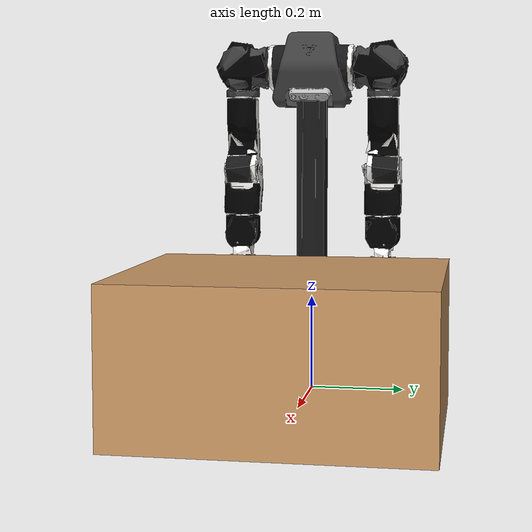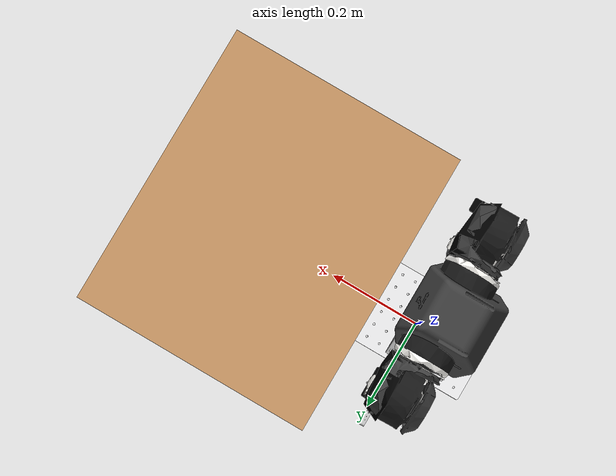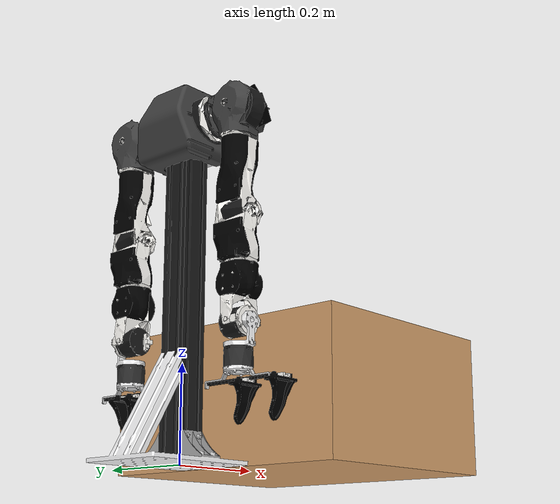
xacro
<?xml version="1.0"?>
<robot name="openarm" xmlns:xacro="http://www.ros.org/wiki/xacro">

  <!-- ==================== Arguments ==================== -->
  <xacro:arg name="use_camera" default="true"/>
  <xacro:arg name="use_table" default="true"/>
  <xacro:arg name="gazebo" default="false"/> <!-- 预留，暂未用 -->

  <!-- ==================== Includes / Materials ==================== -->
  <material name="aluminum">
    <color rgba="0.5 0.5 0.5 1"/>
  </material>
  <material name="plastic">
    <color rgba="0.1 0.1 0.1 1"/>
  </material>

  <!-- ==================== World & Base ==================== -->
  <link name="world"/>

  <link name="openarm_body_link0">
    <visual>
      <origin xyz="0 0 0" rpy="0 0 0"/>
      <geometry>
        <mesh filename="package://openarm_description/meshes/body/v10/visual/body_link0.dae" scale="0.001 0.001 0.001"/>
      </geometry>
    </visual>
    <collision>
      <origin xyz="0 0 0" rpy="0 0 0"/>
      <geometry>
        <mesh filename="package://openarm_description/meshes/body/v10/collision/body_link0_symp.stl" scale="0.001 0.001 0.001"/>
      </geometry>
    </collision>
    <inertial>
      <mass value="13.89"/>
      <origin xyz="0 0 0" rpy="0 0 0"/>
      <inertia ixx="1.653" ixy="0.0" ixz="0.0" iyy="1.653" iyz="0.0" izz="0.051"/>
    </inertial>
  </link>

  <joint name="openarm_body_world_joint" type="fixed">
    <parent link="world"/>
    <child link="openarm_body_link0"/>
    <origin xyz="0 0 0" rpy="0 0 0"/>
  </joint>

  <!-- ==================== Arm Macro ==================== -->
  <xacro:macro name="openarm_arm" params="prefix reflect">

    <!-- Fixed joint from body to arm base -->
    <joint name="${prefix}_openarm_body_link0_joint" type="fixed">
      <parent link="openarm_body_link0"/>
      <child link="${prefix}_link0"/>
      <origin xyz="0 ${reflect * 0.031} 0.698" rpy="${reflect * -1.5708} 0 0"/>
    </joint>

    <!-- Link0 -->
    <link name="${prefix}_link0">
      <visual>
        <origin xyz="0 0 0" rpy="0 0 0"/>
        <geometry>
          <mesh filename="package://openarm_description/meshes/arm/v10/visual/link0.dae"
                scale="0.001 ${reflect * -0.001} 0.001"/>
        </geometry>
      </visual>
      <collision>
        <origin xyz="0 0 0" rpy="0 0 0"/>
        <geometry>
          <mesh filename="package://openarm_description/meshes/arm/v10/collision/link0_symp.stl"
                scale="0.001 ${reflect * -0.001} 0.001"/>
        </geometry>
      </collision>
      <inertial>
        <mass value="1.1432284943239561"/>
        <origin xyz="-0.0009483362816297526 ${reflect * -0.0001580207020448382} 0.03076860287587199" rpy="0 0 0"/>
        <inertia ixx="0.001128" ixy="${reflect * -4e-06}" ixz="-3.3e-05"
                 iyy="0.000962" iyz="${reflect * -7e-06}" izz="0.00147"/>
      </inertial>
    </link>

    <!-- Link1 -->
    <link name="${prefix}_link1">
      <visual>
        <origin xyz="0 0 -0.0625" rpy="0 0 0"/>
        <geometry>
          <mesh filename="package://openarm_description/meshes/arm/v10/visual/link1.dae"
                scale="0.001 ${reflect * -0.001} 0.001"/>
        </geometry>
      </visual>
      <collision>
        <origin xyz="0 0 -0.0625" rpy="0 0 0"/>
        <geometry>
          <mesh filename="package://openarm_description/meshes/arm/v10/collision/link1_symp.stl"
                scale="0.001 ${reflect * -0.001} 0.001"/>
        </geometry>
      </collision>
      <inertial>
        <mass value="1.1416684646202298"/>
        <origin xyz="0.0011467657911800769 ${reflect * -3.319987657026362e-05} 0.05395284380736254" rpy="0 0 0"/>
        <inertia ixx="0.001567" ixy="${reflect * -1e-06}" ixz="-2.9e-05"
                 iyy="0.001273" iyz="${reflect * 1e-06}" izz="0.001016"/>
      </inertial>
    </link>

    <joint name="${prefix}_joint1" type="revolute">
      <parent link="${prefix}_link0"/>
      <child link="${prefix}_link1"/>
      <origin xyz="0 0 0.0625" rpy="0 0 0"/>
      <axis xyz="0 0 1"/>
      <limit effort="40" lower="${reflect * -3.490659}" upper="${reflect * 1.396263}" velocity="16.754666"/>
    </joint>

    <!-- Link2 -->
    <link name="${prefix}_link2">
      <visual>
        <origin xyz="0.0301 0 -0.1225" rpy="0 0 0"/>
        <geometry>
          <mesh filename="package://openarm_description/meshes/arm/v10/visual/link2.dae"
                scale="0.001 ${reflect * -0.001} 0.001"/>
        </geometry>
      </visual>
      <collision>
        <origin xyz="0.0301 0 -0.1225" rpy="0 0 0"/>
        <geometry>
          <mesh filename="package://openarm_description/meshes/arm/v10/collision/link2_symp.stl"
                scale="0.001 ${reflect * -0.001} 0.001"/>
        </geometry>
      </collision>
      <inertial>
        <mass value="0.2775092746011571"/>
        <origin xyz="0.00839629182351943 ${reflect * -2.0145102027597523e-08} 0.03256649300522363" rpy="0 0 0"/>
        <inertia ixx="0.000359" ixy="${reflect * 1e-06}" ixz="-0.000109"
                 iyy="0.000376" iyz="${reflect * 1e-06}" izz="0.000232"/>
      </inertial>
    </link>

    <joint name="${prefix}_joint2" type="revolute">
      <parent link="${prefix}_link1"/>
      <child link="${prefix}_link2"/>
      <origin xyz="-0.0301 0 0.06" rpy="${reflect * -1.57079632679} 0 0"/>
      <axis xyz="-1 0 0"/>
      <limit effort="40" lower="${reflect * -3.3161253267948965}" upper="${reflect * 0.17453267320510335}" velocity="16.754666"/>
    </joint>

    <!-- Link3 -->
    <link name="${prefix}_link3">
      <visual>
        <origin xyz="0 0 -0.18875" rpy="0 0 0"/>
        <geometry>
          <mesh filename="package://openarm_description/meshes/arm/v10/visual/link3.dae"
                scale="0.001 ${reflect * -0.001} 0.001"/>
        </geometry>
      </visual>
      <collision>
        <origin xyz="0 0 -0.18875" rpy="0 0 0"/>
        <geometry>
          <mesh filename="package://openarm_description/meshes/arm/v10/collision/link3_symp.stl"
                scale="0.001 ${reflect * -0.001} 0.001"/>
        </geometry>
      </collision>
      <inertial>
        <mass value="1.073863338202347"/>
        <origin xyz="-0.002104752099628911 ${reflect * 0.0005549085042607548} 0.09047470545721961" rpy="0 0 0"/>
        <inertia ixx="0.004372" ixy="${reflect * 1e-06}" ixz="1.1e-05"
                 iyy="0.004319" iyz="${reflect * -3.6e-05}" izz="0.000661"/>
      </inertial>
    </link>

    <joint name="${prefix}_joint3" type="revolute">
      <parent link="${prefix}_link2"/>
      <child link="${prefix}_link3"/>
      <origin xyz="0.0301 0 0.06625" rpy="0 0 0"/>
      <axis xyz="0 0 1"/>
      <limit effort="27" lower="-1.570796" upper="1.570796" velocity="5.445426"/>
    </joint>

    <!-- Link4 -->
    <link name="${prefix}_link4">
      <visual>
        <origin xyz="0 -0.0315 -0.3425" rpy="0 0 0"/>
        <geometry>
          <mesh filename="package://openarm_description/meshes/arm/v10/visual/link4.dae"
                scale="0.001 0.001 0.001"/>
        </geometry>
      </visual>
      <collision>
        <origin xyz="0 -0.0315 -0.3425" rpy="0 0 0"/>
        <geometry>
          <mesh filename="package://openarm_description/meshes/arm/v10/collision/link4_symp.stl"
                scale="0.001 0.001 0.001"/>
        </geometry>
      </collision>
      <inertial>
        <mass value="0.6348534566833373"/>
        <origin xyz="-0.0029006831074562967 -0.03030575826634669 0.06339637422196209" rpy="0 0 0"/>
        <inertia ixx="0.000623" ixy="-1e-06" ixz="-1.9e-05"
                 iyy="0.000511" iyz="3.8e-05" izz="0.000334"/>
      </inertial>
    </link>

    <joint name="${prefix}_joint4" type="revolute">
      <parent link="${prefix}_link3"/>
      <child link="${prefix}_link4"/>
      <origin xyz="0 0.0315 0.15375" rpy="0 0 0"/>
      <axis xyz="0 1 0"/>
      <limit effort="27" lower="0.0" upper="2.443461" velocity="5.445426"/>
    </joint>

    <!-- Link5 -->
    <link name="${prefix}_link5">
      <visual>
        <origin xyz="0 0 -0.438" rpy="0 0 0"/>
        <geometry>
          <mesh filename="package://openarm_description/meshes/arm/v10/visual/link5.dae"
                scale="0.001 ${reflect * -0.001} 0.001"/>
        </geometry>
      </visual>
      <collision>
        <origin xyz="0 0 -0.438" rpy="0 0 0"/>
        <geometry>
          <mesh filename="package://openarm_description/meshes/arm/v10/collision/link5_symp.stl"
                scale="0.001 ${reflect * -0.001} 0.001"/>
        </geometry>
      </collision>
      <inertial>
        <mass value="0.6156588026168502"/>
        <origin xyz="-0.003049665024221911 ${reflect * 0.0008866902457326625} 0.043079803024980934" rpy="0 0 0"/>
        <inertia ixx="0.000423" ixy="${reflect * -8e-06}" ixz="6e-06"
                 iyy="0.000445" iyz="${reflect * -6e-06}" izz="0.000324"/>
      </inertial>
    </link>

    <joint name="${prefix}_joint5" type="revolute">
      <parent link="${prefix}_link4"/>
      <child link="${prefix}_link5"/>
      <origin xyz="0 -0.0315 0.0955" rpy="0 0 0"/>
      <axis xyz="0 0 1"/>
      <limit effort="7" lower="-1.570796" upper="1.570796" velocity="20.943946"/>
    </joint>

    <!-- Link6 -->
    <link name="${prefix}_link6">
      <visual>
        <origin xyz="-0.0375 0 -0.5585" rpy="0 0 0"/>
        <geometry>
          <mesh filename="package://openarm_description/meshes/arm/v10/visual/link6.dae"
                scale="0.001 ${reflect * -0.001} 0.001"/>
        </geometry>
      </visual>
      <collision>
        <origin xyz="-0.0375 0 -0.5585" rpy="0 0 0"/>
        <geometry>
          <mesh filename="package://openarm_description/meshes/arm/v10/collision/link6_symp.stl"
                scale="0.001 ${reflect * -0.001} 0.001"/>
        </geometry>
      </collision>
      <inertial>
        <mass value="0.475202773187987"/>
        <origin xyz="-0.037136587005447405 ${reflect * 0.00033230528343419053} -9.498374522309838e-05" rpy="0 0 0"/>
        <inertia ixx="0.000143" ixy="${reflect * 1e-06}" ixz="1e-06"
                 iyy="0.000157" iyz="${reflect * 1e-06}" izz="0.000159"/>
      </inertial>
    </link>

    <joint name="${prefix}_joint6" type="revolute">
      <parent link="${prefix}_link5"/>
      <child link="${prefix}_link6"/>
      <origin xyz="0.0375 0 0.1205" rpy="0 0 0"/>
      <axis xyz="1 0 0"/>
      <limit effort="7" lower="-0.785398" upper="0.785398" velocity="20.943946"/>
    </joint>

    <!-- Link7 -->
    <link name="${prefix}_link7">
      <visual>
        <origin xyz="0 0 -0.5585" rpy="0 0 0"/>
        <geometry>
          <mesh filename="package://openarm_description/meshes/arm/v10/visual/link7.dae"
                scale="0.001 ${reflect * -0.001} 0.001"/>
        </geometry>
      </visual>
      <collision>
        <origin xyz="0 0 -0.5585" rpy="0 0 0"/>
        <geometry>
          <mesh filename="package://openarm_description/meshes/arm/v10/collision/link7_symp.stl"
                scale="0.001 ${reflect * -0.001} 0.001"/>
        </geometry>
      </collision>
      <inertial>
        <mass value="0.4659771327380578"/>
        <origin xyz="6.875510271106056e-05 ${reflect * -0.01266175250761268} 0.06951945409987448" rpy="0 0 0"/>
        <inertia ixx="0.000639" ixy="${reflect * 1e-06}" ixz="1e-06"
                 iyy="0.000497" iyz="${reflect * 8.9e-05}" izz="0.000342"/>
      </inertial>
    </link>

    <joint name="${prefix}_joint7" type="revolute">
      <parent link="${prefix}_link6"/>
      <child link="${prefix}_link7"/>
      <origin xyz="-0.0375 0 0" rpy="0 0 0"/>
      <axis xyz="0 ${reflect * -1} 0"/>
      <limit effort="7" lower="-1.570796" upper="1.570796" velocity="20.943946"/>
    </joint>

    <!-- ==================== Hand Macro (inline for simplicity) ==================== -->
    <link name="${prefix}_hand">
      <visual>
        <origin xyz="0 0 -0.6585" rpy="0 0 0"/>
        <geometry>
          <mesh filename="package://openarm_description/meshes/ee/openarm_hand/visual/hand.dae" scale="0.001 0.001 0.001"/>
        </geometry>
      </visual>
      <collision>
        <origin xyz="0 0 -0.6585" rpy="0 0 0"/>
        <geometry>
          <mesh filename="package://openarm_description/meshes/ee/openarm_hand/collision/hand.stl" scale="0.001 0.001 0.001"/>
        </geometry>
      </collision>
      <inertial>
        <mass value="0.35"/>
        <origin xyz="0 0.002 0.03" rpy="0 0 0"/>
        <inertia ixx="0.0002473" ixy="1e-06" ixz="1e-06" iyy="1.763e-05" iyz="1e-06" izz="0.0002521"/>
      </inertial>
    </link>

    <joint name="${prefix}_hand_joint" type="fixed">
      <parent link="${prefix}_link7"/>
      <child link="${prefix}_hand"/>
      <origin xyz="0 0 0.1001" rpy="0 0 0"/>
    </joint>

    <!-- TCP -->
    <link name="${prefix}_hand_tcp"/>
    <joint name="${prefix}_hand_tcp_joint" type="fixed">
      <parent link="${prefix}_hand"/>
      <child link="${prefix}_hand_tcp"/>
      <origin xyz="0 0 0.08" rpy="0 0 0"/>
    </joint>

    <!-- Fingers -->
    <link name="${prefix}_left_finger">
      <visual>
        <origin xyz="0 -0.05 -0.673001" rpy="0 0 0"/>
        <geometry>
          <mesh filename="package://openarm_description/meshes/ee/openarm_hand/visual/finger.dae" scale="0.001 0.001 0.001"/>
        </geometry>
      </visual>
      <collision>
        <origin xyz="0 -0.05 -0.673001" rpy="0 0 0"/>
        <geometry>
          <mesh filename="package://openarm_description/meshes/ee/openarm_hand/collision/finger.stl" scale="0.001 0.001 0.001"/>
        </geometry>
      </collision>
      <inertial>
        <mass value="0.03602545343277134"/>
        <origin xyz="0.0064528 0.01702 0.0219685" rpy="0 0 0"/>
        <inertia ixx="2.375e-05" ixy="0" ixz="0" iyy="2.375e-05" iyz="0" izz="7.5e-06"/>
      </inertial>
    </link>

    <link name="${prefix}_right_finger">
      <visual>
        <origin xyz="0 0.05 -0.673001" rpy="0 0 0"/>
        <geometry>
          <mesh filename="package://openarm_description/meshes/ee/openarm_hand/visual/finger.dae"
                scale="0.001 ${reflect * -0.001} 0.001"/>
        </geometry>
      </visual>
      <collision>
        <origin xyz="0 0.05 -0.673001" rpy="0 0 0"/>
        <geometry>
          <mesh filename="package://openarm_description/meshes/ee/openarm_hand/collision/finger.stl"
                scale="0.001 ${reflect * -0.001} 0.001"/>
        </geometry>
      </collision>
      <inertial>
        <mass value="0.03602545343277134"/>
        <origin xyz="0.0064528 ${reflect * -0.01702} 0.0219685" rpy="0 0 0"/>
        <inertia ixx="2.375e-05" ixy="0" ixz="0" iyy="2.375e-05" iyz="0" izz="7.5e-06"/>
      </inertial>
    </link>

    <joint name="${prefix}_finger_joint1" type="prismatic">
      <parent link="${prefix}_hand"/>
      <child link="${prefix}_right_finger"/>
      <origin xyz="0 -0.006 0.015" rpy="0 0 0"/>
      <axis xyz="0 -1 0"/>
      <limit effort="333" lower="0.0" upper="0.044" velocity="10.0"/>
    </joint>

    <joint name="${prefix}_finger_joint2" type="prismatic">
      <parent link="${prefix}_hand"/>
      <child link="${prefix}_left_finger"/>
      <origin xyz="0 0.006 0.015" rpy="0 0 0"/>
      <axis xyz="0 1 0"/>
      <limit effort="333" lower="0.0" upper="0.044" velocity="10.0"/>
      <mimic joint="${prefix}_finger_joint1"/>
    </joint>

  </xacro:macro>

  <!-- ==================== Instantiate Arms ==================== -->
  <xacro:openarm_arm prefix="openarm_left" reflect="1"/>
  <xacro:openarm_arm prefix="openarm_right" reflect="-1"/>

  <!-- ==================== Camera (RealSense D435i) ==================== -->
  <xacro:if value="$(arg use_camera)">
    <joint name="camera_joint" type="fixed">
      <origin xyz="0.035 0 0.63" rpy="0 0.5235988 0"/>
      <parent link="openarm_body_link0"/>
      <child link="camera_bottom_screw_frame"/>
    </joint>
    <link name="camera_bottom_screw_frame"/>

    <joint name="camera_link_joint" type="fixed">
      <origin xyz="0.0106 0.0175 0.0125" rpy="0 0 0"/>
      <parent link="camera_bottom_screw_frame"/>
      <child link="camera_link"/>
    </joint>

    <link name="camera_link">
      <visual>
        <origin xyz="0.0043 -0.0175 0" rpy="1.5707963267948966 0 1.5707963267948966"/>
        <geometry>
          <mesh filename="file:///home/ldp/openarm_ws/install/openarm_description/share/openarm_description/meshes/cam/d435.dae"/>
        </geometry>
      </visual>
      <collision>
        <origin xyz="0 -0.0175 0" rpy="0 0 0"/>
        <geometry>
          <box size="0.02505 0.09 0.025"/>
        </geometry>
      </collision>
      <inertial>
        <mass value="0.072"/>
        <origin xyz="0 0 0"/>
        <inertia ixx="0.003881243" ixy="0.0" ixz="0.0" iyy="0.000498940" iyz="0.0" izz="0.003879257"/>
      </inertial>
    </link>
  </xacro:if>

  <!-- ==================== Table ==================== -->
  <xacro:if value="$(arg use_table)">
    <link name="table">
      <visual>
        <origin xyz="0 0 0"/>
        <geometry>
          <box size="0.5 0.6 0.3"/>
        </geometry>
        <material name="table_color">
          <color rgba="0.8 0.6 0.4 1"/>
        </material>
      </visual>
      <collision>
        <origin xyz="0 0 0"/>
        <geometry>
          <box size="0.5 0.6 0.3"/>
        </geometry>
      </collision>
      <inertial>
        <origin xyz="0 0 0.15"/>
        <mass value="5"/>
        <inertia ixx="0.05" ixy="0" ixz="0" iyy="0.05" iyz="0" izz="0.05"/>
      </inertial>
    </link>

    <joint name="table_to_world" type="fixed">
      <parent link="world"/>
      <child link="table"/>
      <origin xyz="0.35 0 0.15" rpy="0 0 0"/>
    </joint>
  </xacro:if>

</robot>
